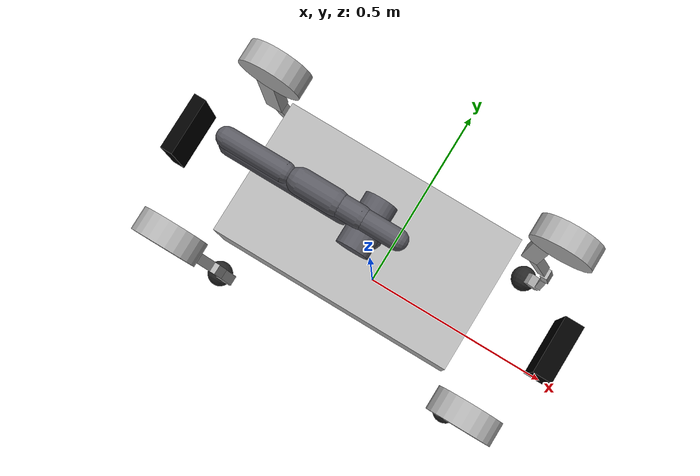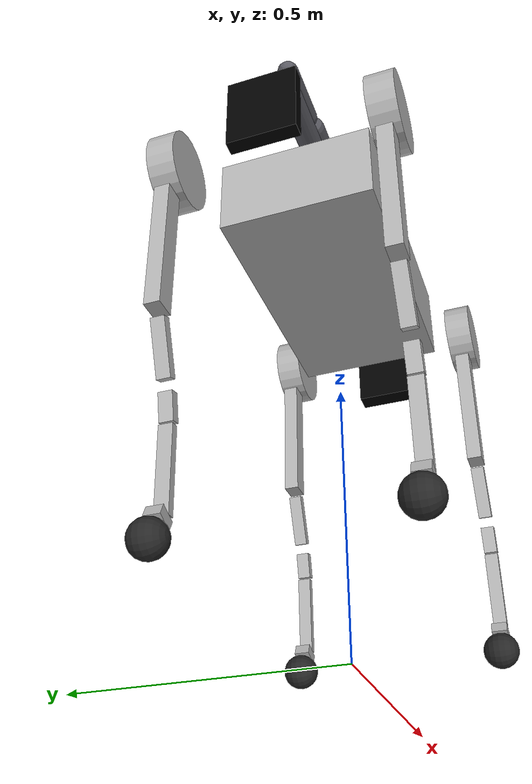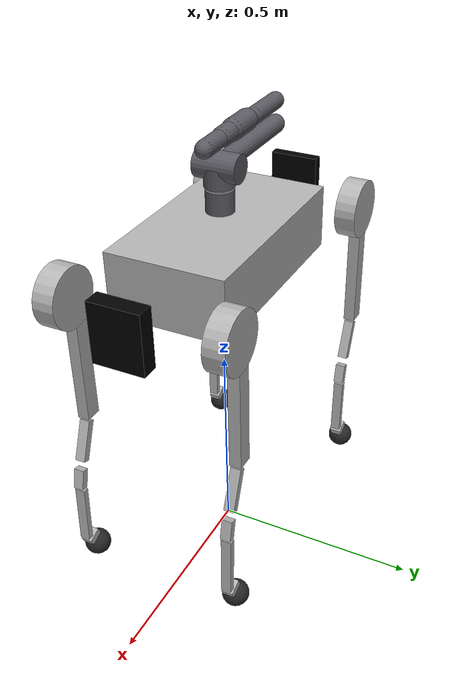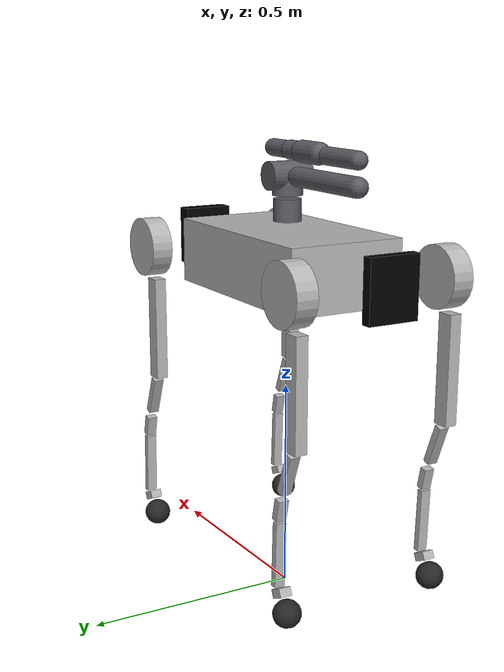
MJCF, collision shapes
<mujoco model="b2">
  <compiler angle="radian" meshdir="assets" autolimits="true"/>
  <option timestep="0.001" cone="elliptic" impratio="100"/>

  <default>
    <default class="b2">
      <geom type="mesh"/>
      <!-- Match the training articulation: no additional reflected armature;
           actuator friction is 0.01 and the PD gains are applied below. -->
      <joint damping="0" armature="0" frictionloss="0.01"/>
      <default class="visual">
        <geom contype="0" conaffinity="0" group="2"/>
      </default>
      <default class="collision">
        <!-- Bit 2 collides with the world's default bit 1, but not with
             another robot geom. This matches Isaac Lab self_collision=False. -->
        <geom contype="2" conaffinity="1" group="3" mass="0" density="0"/>
      </default>
      <site size="0.001" rgba="0.5 0.5 0.5 0.3" group="4"/>
    </default>
  </default>

  <asset>
    <mesh name="base_link" file="base_link.obj"/>
    <mesh name="logo_left" file="logo_left.obj"/>
    <mesh name="logo_right" file="logo_right.obj"/>
    <mesh name="f_dc_link" file="f_dc_link.obj"/>
    <mesh name="r_dc_link" file="r_dc_link.obj"/>
    <mesh name="fake_imu_link" file="fake_imu_link.STL"/>
    <mesh name="fake_head_Link" file="fake_head_Link.STL"/>
    <mesh name="fake_tail_link" file="fake_tail_link.STL"/>
    <mesh name="FL_hip" file="FL_hip.obj"/>
    <mesh name="FL_thigh" file="FL_thigh.obj"/>
    <mesh name="FL_thigh_protect" file="FL_thigh_protect.obj"/>
    <mesh name="FL_calf" file="FL_calf.obj"/>
    <mesh name="FL_foot" file="FL_foot.obj"/>
    <mesh name="FR_hip" file="FR_hip.obj"/>
    <mesh name="FR_thigh" file="FR_thigh.obj"/>
    <mesh name="FR_thigh_protect" file="FR_thigh_protect.obj"/>
    <mesh name="FR_calf" file="FR_calf.obj"/>
    <mesh name="FR_foot" file="FR_foot.obj"/>
    <mesh name="RL_hip" file="RL_hip.obj"/>
    <mesh name="RL_thigh" file="RL_thigh.obj"/>
    <mesh name="RL_thigh_protect" file="RL_thigh_protect.obj"/>
    <mesh name="RL_calf" file="RL_calf.obj"/>
    <mesh name="RL_foot" file="RL_foot.obj"/>
    <mesh name="RR_hip" file="RR_hip.obj"/>
    <mesh name="RR_thigh" file="RR_thigh.obj"/>
    <mesh name="RR_thigh_protect" file="RR_thigh_protect.obj"/>
    <mesh name="RR_calf" file="RR_calf.obj"/>
    <mesh name="RR_foot" file="RR_foot.obj"/>
    <mesh name="f_oc_link" file="f_oc_link.obj"/>
    <mesh name="r_oc_link" file="r_oc_link.obj"/>
    <mesh name="z1_Link00" file="z1_Link00.obj"/>
    <mesh name="z1_Link01" file="z1_Link01.obj"/>
    <mesh name="z1_Link02" file="z1_Link02.obj"/>
    <mesh name="z1_Link03" file="z1_Link03.obj"/>
    <mesh name="z1_Link04" file="z1_Link04.obj"/>
    <mesh name="z1_Link05" file="z1_Link05.obj"/>
    <mesh name="z1_Link06" file="z1_Link06.obj"/>
  </asset>
  <worldbody>
    <body name="base_link" pos="0 0 0.8" childclass="b2">
      <inertial pos="0.0231645 0.00449452 0.0125751" quat="0.00382689 0.673473 0.00143181 0.7392" mass="41.9096" diaginertia="1.77579 1.70958 0.351441"/>
      <joint name="floating_base_joint" type="free"/>
      <geom type="mesh" contype="0" conaffinity="0" group="1" density="0" rgba="0.7 0.7 0.7 1" mesh="base_link"/>
      <geom size="0.25 0.14 0.075" type="box" rgba="0.7 0.7 0.7 1" class="collision"/>
      <geom type="mesh" contype="0" conaffinity="0" group="1" density="0" rgba="1 1 1 1" mesh="logo_left"/>
      <geom type="mesh" contype="0" conaffinity="0" group="1" density="0" rgba="1 1 1 1" mesh="logo_right"/>
      <geom pos="0.841724 -4.57659e-06 0.130379" quat="0.00244632 3.13845e-06 0.999997 1.29099e-06" type="mesh" contype="0" conaffinity="0" group="1" density="0" rgba="0 0 0 1" mesh="f_dc_link"/>
      <geom pos="-0.378319 0.000200109 -0.379902" quat="-1.30076e-06 -0.708662 5.35065e-07 0.705548" type="mesh" contype="0" conaffinity="0" group="1" density="0" rgba="0 0 0 1" mesh="r_dc_link"/>
      <geom pos="0 -0.02341 0.04927" type="mesh" contype="0" conaffinity="0" group="1" density="0" rgba="0 0 0 1" mesh="fake_imu_link"/>
      <geom type="mesh" contype="0" conaffinity="0" group="1" density="0" rgba="0 0 0 1" mesh="fake_head_Link"/>
      <geom size="0.02 0.06 0.07" pos="0.41 0 0.005" type="box" rgba="0 0 0 1" class="collision"/>
      <geom type="mesh" contype="0" conaffinity="0" group="1" density="0" rgba="0 0 0 1" mesh="fake_tail_link"/>
      <geom size="0.0125 0.06 0.07" pos="-0.405 0 0.005" type="box" rgba="0 0 0 1" class="collision"/>
      <geom pos="0.84158 -0.0134347 -0.0134347" quat="-3.89602e-06 1.29867e-06 0.707107 -0.707107" type="mesh" contype="0" conaffinity="0" group="1" density="0" rgba="0 0 0 1" mesh="f_oc_link"/>
      <geom pos="-0.00451008 0.0252504 -0.0262476" quat="0.707107 -0.707107 -1.29867e-06 -1.29867e-06" type="mesh" contype="0" conaffinity="0" group="1" density="0" rgba="0 0 0 1" mesh="r_oc_link"/>
      <site name="imu" pos="0 -0.02341 0.04927"/>
      <body name="FL_hip" pos="0.3285 0.072 0">
        <inertial pos="-0.00348459 -0.00896704 0" quat="0.51136 0.510955 0.488403 0.488773" mass="2.9464" diaginertia="0.00502565 0.00397575 0.00346041"/>
        <joint name="FL_hip_joint" pos="0 0 0" axis="1 0 0" range="-0.87 0.87"/>
        <geom type="mesh" contype="0" conaffinity="0" group="1" density="0" rgba="0.7 0.7 0.7 1" mesh="FL_hip"/>
        <geom size="0.07 0.025" pos="0 0.12 0" quat="0.707107 0.707107 0 0" type="cylinder" rgba="0.7 0.7 0.7 1" class="collision"/>
        <body name="FL_thigh" pos="0 0.11973 0">
          <inertial pos="-0.00592206 -0.0335174 -0.0545473" quat="0.910035 0.0855949 -0.000888221 0.405598" mass="4.8094" diaginertia="0.0640935 0.0634463 0.00699947"/>
          <joint name="FL_thigh_joint" pos="0 0 0" axis="0 1 0" range="-0.94 4.69"/>
          <geom type="mesh" contype="0" conaffinity="0" group="1" density="0" rgba="0.7 0.7 0.7 1" mesh="FL_thigh"/>
          <geom size="0.125 0.014 0.02" pos="-0.03 0 -0.2" quat="0.707388 0 0.706825 0" type="box" rgba="0.7 0.7 0.7 1" class="collision"/>
          <geom type="mesh" contype="0" conaffinity="0" group="1" density="0" rgba="0.65 0.68 0.65 1" mesh="FL_thigh_protect"/>
          <body name="FL_calf" pos="0 -8.6984e-05 -0.35">
            <inertial pos="0.00792095 0 -0.180895" quat="0.70709 -0.00488772 -0.00488772 0.70709" mass="0.53" diaginertia="0.0169205 0.0167822 0.000404298"/>
            <joint name="FL_calf_joint" pos="0 0 0" axis="0 1 0" range="-2.82 -0.43"/>
            <geom type="mesh" contype="0" conaffinity="0" group="1" density="0" rgba="0.7 0.7 0.7 1" mesh="FL_calf"/>
            <geom size="0.05 0.01225 0.009" pos="-0.002 0 -0.03" quat="0.825336 0 0.564642 0" type="box" rgba="0.7 0.7 0.7 1" class="collision"/>
            <geom size="0.025 0.01225 0.009" pos="0.03 0 -0.12" quat="0.780707 0 0.624897 0" type="box" rgba="0.7 0.7 0.7 1" class="collision"/>
            <geom size="0.075 0.01225 0.0075" pos="0.036 0 -0.225" quat="0.721382 0 0.692537 0" type="box" rgba="0.7 0.7 0.7 1" class="collision"/>
            <geom size="0.01 0.014 0.0175" pos="0.023 0 -0.31" quat="0.540302 0 0.841471 0" type="box" rgba="0.7 0.7 0.7 1" class="collision"/>
            <geom pos="0 8.6986e-05 0" type="mesh" contype="0" conaffinity="0" group="1" density="0" rgba="0.15 0.15 0.15 1" mesh="FL_foot" friction="0.4 0.005 0.0001"/>
            <geom size="0.032" pos="0 8.6986e-05 -0.35" quat="0.707388 0.706825 0 0" type="sphere" rgba="0.15 0.15 0.15 1" class="collision" friction="1.0 0.005 0.0001"/>
          </body>
        </body>
      </body>
      <body name="FR_hip" pos="0.3285 -0.072 0">
        <inertial pos="-0.00844158 0.0100194 0.000239503" quat="0.476612 0.477235 0.518931 0.525166" mass="2.9464" diaginertia="0.00485578 0.00370661 0.0027719"/>
        <joint name="FR_hip_joint" pos="0 0 0" axis="1 0 0" range="-0.87 0.87"/>
        <geom type="mesh" contype="0" conaffinity="0" group="1" density="0" rgba="0.7 0.7 0.7 1" mesh="FR_hip"/>
        <geom size="0.07 0.025" pos="0 -0.12 0" quat="0.707107 0.707107 0 0" type="cylinder" rgba="0.7 0.7 0.7 1" class="collision"/>
        <body name="FR_thigh" pos="0 -0.11973 0">
          <inertial pos="-0.00592206 0.0335174 -0.0545473" quat="0.405665 -0.000894444 0.0855945 0.910005" mass="4.8094" diaginertia="0.0640937 0.0634465 0.00699948"/>
          <joint name="FR_thigh_joint" pos="0 0 0" axis="0 1 0" range="-0.94 4.69"/>
          <geom type="mesh" contype="0" conaffinity="0" group="1" density="0" rgba="0.7 0.7 0.7 1" mesh="FR_thigh"/>
          <geom size="0.125 0.014 0.02" pos="-0.03 0 -0.2" quat="0.707388 0 0.706825 0" type="box" rgba="0.7 0.7 0.7 1" class="collision"/>
          <geom type="mesh" contype="0" conaffinity="0" group="1" density="0" rgba="0.65 0.68 0.65 1" mesh="FR_thigh_protect"/>
          <body name="FR_calf" pos="0 8.6986e-05 -0.35">
            <inertial pos="0.00792095 0 -0.180895" quat="0.70709 -0.00488772 -0.00488772 0.70709" mass="0.53" diaginertia="0.0169205 0.0167822 0.000404298"/>
            <joint name="FR_calf_joint" pos="0 0 0" axis="0 1 0" range="-2.82 -0.43"/>
            <geom type="mesh" contype="0" conaffinity="0" group="1" density="0" rgba="0.7 0.7 0.7 1" mesh="FR_calf"/>
            <geom size="0.05 0.01225 0.009" pos="-0.002 0 -0.03" quat="0.825336 0 0.564642 0" type="box" rgba="0.7 0.7 0.7 1" class="collision"/>
            <geom size="0.025 0.01225 0.009" pos="0.03 0 -0.12" quat="0.780707 0 0.624897 0" type="box" rgba="0.7 0.7 0.7 1" class="collision"/>
            <geom size="0.075 0.01225 0.0075" pos="0.036 0 -0.225" quat="0.721382 0 0.692537 0" type="box" rgba="0.7 0.7 0.7 1" class="collision"/>
            <geom size="0.01 0.014 0.0175" pos="0.023 0 -0.31" quat="0.540302 0 0.841471 0" type="box" rgba="0.7 0.7 0.7 1" class="collision"/>
            <geom type="mesh" contype="0" conaffinity="0" group="1" density="0" rgba="0.15 0.15 0.15 1" mesh="FR_foot" friction="0.4 0.005 0.0001"/>
            <geom size="0.032" pos="0 8.6986e-05 -0.35" quat="0.707388 0.706825 0 0" type="sphere" rgba="0.15 0.15 0.15 1" class="collision" friction="1.0 0.005 0.0001"/>
          </body>
        </body>
      </body>
      <body name="RL_hip" pos="-0.3285 0.072 0">
        <inertial pos="0.00844158 -0.0100194 0.000239503" quat="0.477235 0.476612 0.525166 0.518931" mass="2.9464" diaginertia="0.00485578 0.00370661 0.0027719"/>
        <joint name="RL_hip_joint" pos="0 0 0" axis="1 0 0" range="-0.87 0.87"/>
        <geom type="mesh" contype="0" conaffinity="0" group="1" density="0" rgba="0.7 0.7 0.7 1" mesh="RL_hip"/>
        <geom size="0.07 0.025" pos="0 0.12 0" quat="0.707107 0.707107 0 0" type="cylinder" rgba="0.7 0.7 0.7 1" class="collision"/>
        <body name="RL_thigh" pos="0 0.11973 0">
          <inertial pos="-0.00592206 -0.0335174 -0.0545473" quat="0.910005 0.0855945 -0.000894444 0.405665" mass="4.8094" diaginertia="0.0640937 0.0634465 0.00699948"/>
          <joint name="RL_thigh_joint" pos="0 0 0" axis="0 1 0" range="-0.94 4.69"/>
          <geom type="mesh" contype="0" conaffinity="0" group="1" density="0" rgba="0.7 0.7 0.7 1" mesh="RL_thigh"/>
          <geom size="0.125 0.014 0.02" pos="-0.03 0 -0.2" quat="0.707388 0 0.706825 0" type="box" rgba="0.7 0.7 0.7 1" class="collision"/>
          <geom type="mesh" contype="0" conaffinity="0" group="1" density="0" rgba="0.65 0.68 0.65 1" mesh="RL_thigh_protect"/>
          <body name="RL_calf" pos="0 -8.6984e-05 -0.35">
            <inertial pos="0.00792095 0 -0.180895" quat="0.70709 -0.00488772 -0.00488772 0.70709" mass="0.53" diaginertia="0.0169205 0.0167822 0.000404298"/>
            <joint name="RL_calf_joint" pos="0 0 0" axis="0 1 0" range="-2.82 -0.43"/>
            <geom type="mesh" contype="0" conaffinity="0" group="1" density="0" rgba="0.7 0.7 0.7 1" mesh="RL_calf"/>
            <geom size="0.05 0.01225 0.009" pos="-0.002 0 -0.03" quat="0.825336 0 0.564642 0" type="box" rgba="0.7 0.7 0.7 1" class="collision"/>
            <geom size="0.025 0.01225 0.009" pos="0.03 0 -0.12" quat="0.780707 0 0.624897 0" type="box" rgba="0.7 0.7 0.7 1" class="collision"/>
            <geom size="0.075 0.01225 0.0075" pos="0.036 0 -0.225" quat="0.721382 0 0.692537 0" type="box" rgba="0.7 0.7 0.7 1" class="collision"/>
            <geom size="0.01 0.014 0.0175" pos="0.023 0 -0.31" quat="0.540302 0 0.841471 0" type="box" rgba="0.7 0.7 0.7 1" class="collision"/>
            <geom pos="0 8.6986e-05 0" type="mesh" contype="0" conaffinity="0" group="1" density="0" rgba="0.15 0.15 0.15 1" mesh="RL_foot" friction="0.4 0.005 0.0001"/>
            <geom size="0.032" pos="0 8.6986e-05 -0.35" quat="0.707388 0.706825 0 0" type="sphere" rgba="0.15 0.15 0.15 1" class="collision" friction="1.0 0.005 0.0001"/>
          </body>
        </body>
      </body>
      <body name="RR_hip" pos="-0.3285 -0.072 0">
        <inertial pos="0.00348459 0.00896704 0" quat="0.510955 0.51136 0.488773 0.488403" mass="2.9464" diaginertia="0.00502565 0.00397575 0.00346041"/>
        <joint name="RR_hip_joint" pos="0 0 0" axis="1 0 0" range="-0.87 0.87"/>
        <geom type="mesh" contype="0" conaffinity="0" group="1" density="0" rgba="0.7 0.7 0.7 1" mesh="RR_hip"/>
        <geom size="0.07 0.025" pos="0 -0.12 0" quat="0.707107 0.707107 0 0" type="cylinder" rgba="0.7 0.7 0.7 1" class="collision"/>
        <body name="RR_thigh" pos="0 -0.11973 0">
          <inertial pos="-0.00592206 0.0335174 -0.0545473" quat="0.405598 -0.000888221 0.0855949 0.910035" mass="4.8094" diaginertia="0.0640935 0.0634463 0.00699947"/>
          <joint name="RR_thigh_joint" pos="0 0 0" axis="0 1 0" range="-0.94 4.69"/>
          <geom type="mesh" contype="0" conaffinity="0" group="1" density="0" rgba="0.7 0.7 0.7 1" mesh="RR_thigh"/>
          <geom size="0.125 0.014 0.02" pos="-0.03 0 -0.2" quat="0.707388 0 0.706825 0" type="box" rgba="0.7 0.7 0.7 1" class="collision"/>
          <geom type="mesh" contype="0" conaffinity="0" group="1" density="0" rgba="0.65 0.68 0.65 1" mesh="RR_thigh_protect"/>
          <body name="RR_calf" pos="0 8.6986e-05 -0.35">
            <inertial pos="0.00792095 -2.0683e-05 -0.180895" quat="0.706616 -0.00493298 -0.0048424 0.707563" mass="0.53" diaginertia="0.0169205 0.0167822 0.000404299"/>
            <joint name="RR_calf_joint" pos="0 0 0" axis="0 1 0" range="-2.82 -0.43"/>
            <geom type="mesh" contype="0" conaffinity="0" group="1" density="0" rgba="0.7 0.7 0.7 1" mesh="RR_calf"/>
            <geom size="0.05 0.01225 0.009" pos="-0.002 0 -0.03" quat="0.825336 0 0.564642 0" type="box" rgba="0.7 0.7 0.7 1" class="collision"/>
            <geom size="0.025 0.01225 0.009" pos="0.03 0 -0.12" quat="0.780707 0 0.624897 0" type="box" rgba="0.7 0.7 0.7 1" class="collision"/>
            <geom size="0.075 0.01225 0.0075" pos="0.036 0 -0.225" quat="0.721382 0 0.692537 0" type="box" rgba="0.7 0.7 0.7 1" class="collision"/>
            <geom size="0.01 0.014 0.0175" pos="0.023 0 -0.31" quat="0.540302 0 0.841471 0" type="box" rgba="0.7 0.7 0.7 1" class="collision"/>
            <geom pos="0 -8.6984e-05 0" type="mesh" contype="0" conaffinity="0" group="1" density="0" rgba="0.15 0.15 0.15 1" mesh="RR_foot" friction="0.4 0.005 0.0001"/>
            <geom size="0.032" pos="0 8.6986e-05 -0.35" quat="0.707388 0.706825 0 0" type="sphere" rgba="0.15 0.15 0.15 1" class="collision" friction="1.0 0.005 0.0001"/>
          </body>
        </body>
      </body>
      <!-- Z1 arm without the gun/end payload.  The kinematic and inertial
           values match b2_z1_no_gun_description.urdf. -->
      <body name="link00" pos="0 0 0.09">
        <inertial pos="-0.0033498 -0.0001362 0.0249584" mass="0.4724748"
                  fullinertia="0.0003794 0.0004152 0.0005307 -0.0000003 -0.0000104 -0.000001"/>
        <geom type="mesh" mesh="z1_Link00" rgba="0.45 0.45 0.48 1"
              contype="0" conaffinity="0" group="1" density="0"/>
        <geom type="cylinder" size="0.0325 0.0255" pos="0 0 0.0255"
              rgba="0.35 0.35 0.38 1" class="collision"/>
        <body name="link01" pos="0 0 0.0585">
          <joint name="joint1" axis="0 0 1" range="-2.6179939 2.6179939"
                 damping="5" armature="0" frictionloss="0.01"/>
          <inertial pos="0.0000025 -0.000252 0.0231717" mass="0.6733255"
                    fullinertia="0.0012833 0.0007193 0.0008394 -0.0000001 -0.0000004 0.0000005"/>
          <geom type="mesh" mesh="z1_Link01" rgba="0.45 0.45 0.48 1"
                contype="0" conaffinity="0" group="1" density="0"/>
          <geom type="cylinder" size="0.035 0.0225" pos="0 0 0.0225"
                rgba="0.35 0.35 0.38 1" class="collision"/>
          <body name="link02" pos="0 0 0.045">
            <joint name="joint2" axis="0 1 0" range="0 2.9670597"
                   damping="5" armature="0" frictionloss="0.01"/>
            <inertial pos="-0.110126 0.0024003 0.0015827" mass="1.1913226"
                      fullinertia="0.0010214 0.0242946 0.0246611 0.0006236 0.0000051 -0.0000021"/>
            <geom type="mesh" mesh="z1_Link02" rgba="0.45 0.45 0.48 1"
                  contype="0" conaffinity="0" group="1" density="0"/>
            <geom type="cylinder" size="0.0325" fromto="0 -0.051 0 0 0.051 0"
                  rgba="0.35 0.35 0.38 1" class="collision"/>
            <geom type="capsule" size="0.0225" fromto="-0.045 0 0 -0.28 0 0"
                  rgba="0.35 0.35 0.38 1" class="collision"/>
            <body name="link03" pos="-0.35 0 0">
              <joint name="joint3" axis="0 1 0" range="-2.8797933 0"
                     damping="5" armature="0" frictionloss="0.01"/>
              <inertial pos="0.1060921 -0.0054182 0.0347638" mass="0.8394087"
                        fullinertia="0.0010806 0.0095424 0.0088662 -0.0000867 -0.002081 -0.0000133"/>
              <geom type="mesh" mesh="z1_Link03" rgba="0.45 0.45 0.48 1"
                    contype="0" conaffinity="0" group="1" density="0"/>
              <geom type="capsule" size="0.02" fromto="0.07 0 0.055 0.186 0 0.055"
                    rgba="0.35 0.35 0.38 1" class="collision"/>
              <body name="link04" pos="0.218 0 0.057">
                <joint name="joint4" axis="0 1 0" range="-1.5184364 1.5184364"
                       damping="5" armature="0" frictionloss="0.01"/>
                <inertial pos="0.0436668 0.0036474 -0.0017019" mass="0.5640456"
                          fullinertia="0.0003158 0.00093 0.0009791 0.0000813 0.0000409 -0.000006"/>
                <geom type="mesh" mesh="z1_Link04" rgba="0.45 0.45 0.48 1"
                      contype="0" conaffinity="0" group="1" density="0"/>
                <geom type="capsule" size="0.025" fromto="0 0 0 0.07 0 0"
                      rgba="0.35 0.35 0.38 1" class="collision"/>
                <body name="link05" pos="0.07 0 0">
                  <joint name="joint5" axis="0 0 1" range="-1.3439035 1.3439035"
                         damping="5" armature="0" frictionloss="0.01"/>
                  <inertial pos="0.0312153 0 0.0064632" mass="0.3893849"
                            fullinertia="0.000176 0.000559 0.0005386 0.0000004 0.0000569 -0.0000001"/>
                  <geom type="mesh" mesh="z1_Link05" rgba="0.45 0.45 0.48 1"
                        contype="0" conaffinity="0" group="1" density="0"/>
                  <geom type="capsule" size="0.022" fromto="0 0 0 0.0492 0 0"
                        rgba="0.35 0.35 0.38 1" class="collision"/>
                  <body name="link06" pos="0.0492 0 0">
                    <joint name="joint6" axis="1 0 0" range="-2.7925268 2.7925268"
                           damping="5" armature="0" frictionloss="0.01"/>
                    <inertial pos="0.0241569 -0.0001735 -0.0014388" mass="0.2887581"
                              fullinertia="0.0001833 0.0001475 0.0001468 0.0000012 0.0000005 0.0000001"/>
                    <geom type="mesh" mesh="z1_Link06" rgba="0.45 0.45 0.48 1"
                          contype="0" conaffinity="0" group="1" density="0"/>
                    <geom type="capsule" size="0.02" fromto="0 0 0 0.075 0 0"
                          rgba="0.35 0.35 0.38 1" class="collision"/>
                    <site name="ee_site" pos="0.075 0 0" size="0.012" rgba="1 0.2 0.1 1"/>
                  </body>
                </body>
              </body>
            </body>
          </body>
        </body>
      </body>
    </body>
  </worldbody>

  <actuator>
    <!-- Isaac Lab policy order: hips, thighs, joint1, calves, joint2..joint6. -->
    <motor class="b2" ctrlrange="-200 200" name="FL_hip" joint="FL_hip_joint"/>
    <motor class="b2" ctrlrange="-200 200" name="FR_hip" joint="FR_hip_joint"/>
    <motor class="b2" ctrlrange="-200 200" name="RL_hip" joint="RL_hip_joint"/>
    <motor class="b2" ctrlrange="-200 200" name="RR_hip" joint="RR_hip_joint"/>
    <motor class="b2" ctrlrange="-200 200" name="FL_thigh" joint="FL_thigh_joint"/>
    <motor class="b2" ctrlrange="-200 200" name="FR_thigh" joint="FR_thigh_joint"/>
    <motor class="b2" ctrlrange="-200 200" name="RL_thigh" joint="RL_thigh_joint"/>
    <motor class="b2" ctrlrange="-200 200" name="RR_thigh" joint="RR_thigh_joint"/>
    <position class="b2" name="z1_joint1" joint="joint1" kp="160"
              ctrlrange="-2.6179939 2.6179939" forcerange="-120 120"/>
    <motor class="b2" ctrlrange="-320 320" name="FL_calf" joint="FL_calf_joint"/>
    <motor class="b2" ctrlrange="-320 320" name="FR_calf" joint="FR_calf_joint"/>
    <motor class="b2" ctrlrange="-320 320" name="RL_calf" joint="RL_calf_joint"/>
    <motor class="b2" ctrlrange="-320 320" name="RR_calf" joint="RR_calf_joint"/>
    <position class="b2" name="z1_joint2" joint="joint2" kp="160"
              ctrlrange="0 2.9670597" forcerange="-120 120"/>
    <position class="b2" name="z1_joint3" joint="joint3" kp="160"
              ctrlrange="-2.8797933 0" forcerange="-120 120"/>
    <position class="b2" name="z1_joint4" joint="joint4" kp="160"
              ctrlrange="-1.5184364 1.5184364" forcerange="-120 120"/>
    <position class="b2" name="z1_joint5" joint="joint5" kp="160"
              ctrlrange="-1.3439035 1.3439035" forcerange="-120 120"/>
    <position class="b2" name="z1_joint6" joint="joint6" kp="160"
              ctrlrange="-2.7925268 2.7925268" forcerange="-120 120"/>
  </actuator>

  <sensor>
    <jointpos name="FL_hip_pos" joint="FL_hip_joint" />
    <jointpos name="FR_hip_pos" joint="FR_hip_joint" />
    <jointpos name="RL_hip_pos" joint="RL_hip_joint" />
    <jointpos name="RR_hip_pos" joint="RR_hip_joint" />
    <jointpos name="FL_thigh_pos" joint="FL_thigh_joint" />
    <jointpos name="FR_thigh_pos" joint="FR_thigh_joint" />
    <jointpos name="RL_thigh_pos" joint="RL_thigh_joint" />
    <jointpos name="RR_thigh_pos" joint="RR_thigh_joint" />
    <jointpos name="joint1_pos" joint="joint1" />
    <jointpos name="FL_calf_pos" joint="FL_calf_joint" />
    <jointpos name="FR_calf_pos" joint="FR_calf_joint" />
    <jointpos name="RL_calf_pos" joint="RL_calf_joint" />
    <jointpos name="RR_calf_pos" joint="RR_calf_joint" />
    <jointpos name="joint2_pos" joint="joint2" />
    <jointpos name="joint3_pos" joint="joint3" />
    <jointpos name="joint4_pos" joint="joint4" />
    <jointpos name="joint5_pos" joint="joint5" />
    <jointpos name="joint6_pos" joint="joint6" />

    <jointvel name="FL_hip_vel" joint="FL_hip_joint" />
    <jointvel name="FR_hip_vel" joint="FR_hip_joint" />
    <jointvel name="RL_hip_vel" joint="RL_hip_joint" />
    <jointvel name="RR_hip_vel" joint="RR_hip_joint" />
    <jointvel name="FL_thigh_vel" joint="FL_thigh_joint" />
    <jointvel name="FR_thigh_vel" joint="FR_thigh_joint" />
    <jointvel name="RL_thigh_vel" joint="RL_thigh_joint" />
    <jointvel name="RR_thigh_vel" joint="RR_thigh_joint" />
    <jointvel name="joint1_vel" joint="joint1" />
    <jointvel name="FL_calf_vel" joint="FL_calf_joint" />
    <jointvel name="FR_calf_vel" joint="FR_calf_joint" />
    <jointvel name="RL_calf_vel" joint="RL_calf_joint" />
    <jointvel name="RR_calf_vel" joint="RR_calf_joint" />
    <jointvel name="joint2_vel" joint="joint2" />
    <jointvel name="joint3_vel" joint="joint3" />
    <jointvel name="joint4_vel" joint="joint4" />
    <jointvel name="joint5_vel" joint="joint5" />
    <jointvel name="joint6_vel" joint="joint6" />

    <jointactuatorfrc name="FL_hip_torque" joint="FL_hip_joint" noise="0.01" />
    <jointactuatorfrc name="FR_hip_torque" joint="FR_hip_joint" noise="0.01" />
    <jointactuatorfrc name="RL_hip_torque" joint="RL_hip_joint" noise="0.01" />
    <jointactuatorfrc name="RR_hip_torque" joint="RR_hip_joint" noise="0.01" />
    <jointactuatorfrc name="FL_thigh_torque" joint="FL_thigh_joint" noise="0.01" />
    <jointactuatorfrc name="FR_thigh_torque" joint="FR_thigh_joint" noise="0.01" />
    <jointactuatorfrc name="RL_thigh_torque" joint="RL_thigh_joint" noise="0.01" />
    <jointactuatorfrc name="RR_thigh_torque" joint="RR_thigh_joint" noise="0.01" />
    <jointactuatorfrc name="joint1_torque" joint="joint1" noise="0.01" />
    <jointactuatorfrc name="FL_calf_torque" joint="FL_calf_joint" noise="0.01" />
    <jointactuatorfrc name="FR_calf_torque" joint="FR_calf_joint" noise="0.01" />
    <jointactuatorfrc name="RL_calf_torque" joint="RL_calf_joint" noise="0.01" />
    <jointactuatorfrc name="RR_calf_torque" joint="RR_calf_joint" noise="0.01" />
    <jointactuatorfrc name="joint2_torque" joint="joint2" noise="0.01" />
    <jointactuatorfrc name="joint3_torque" joint="joint3" noise="0.01" />
    <jointactuatorfrc name="joint4_torque" joint="joint4" noise="0.01" />
    <jointactuatorfrc name="joint5_torque" joint="joint5" noise="0.01" />
    <jointactuatorfrc name="joint6_torque" joint="joint6" noise="0.01" />

    <framequat name="imu_quat" objtype="site" objname="imu" />
    <gyro name="imu_gyro" site="imu" />
    <accelerometer name="imu_acc" site="imu" />

    <framepos name="frame_pos" objtype="site" objname="imu" />
    <framelinvel name="frame_vel" objtype="site" objname="imu" />
  </sensor>

  <keyframe>
    <key name="home"
         qpos="0 0 0.55 1 0 0 0
               0.10 0.80 -1.50 -0.10 0.80 -1.50
               0.10 1.00 -1.50 -0.10 1.00 -1.50
               0.00 2.55 -1.60 -1.40 0.00 0.00"
         ctrl="0 0 0 0 0 0 0 0 0 0 0 0 0 0 0 0 0 0"/>
  </keyframe>

</mujoco>
